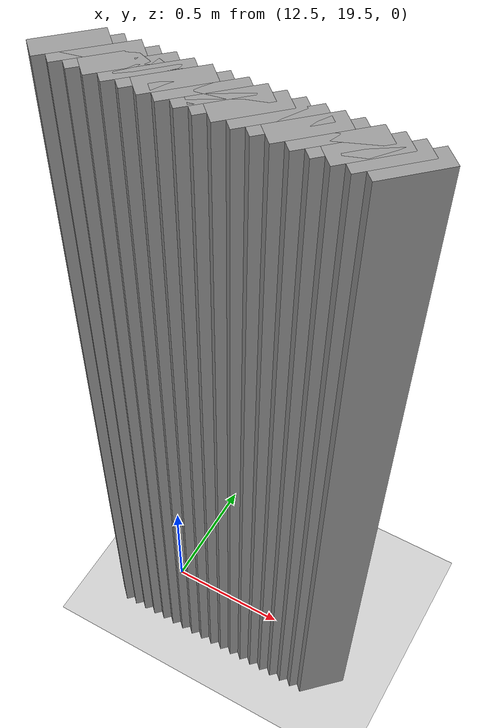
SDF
<sdf version="1.5">
 <world name="default">
  <include><uri>model://ground_plane</uri></include>
  <include><uri>model://sun</uri></include>
  <model name="grey_wall_435">
   <static>1</static>
   <link name="link">
    <pose>12.4 19.35  1.4 0 0 -0.785398163397</pose>
    <collision name="collision"><geometry><box><size>0.0707106781187 .2  2.8</size></box></geometry></collision>
    <visual name="visual">
     <cast_shadows>0</cast_shadows>
     <geometry><box><size>0.0707106781187 .2  2.8</size></box></geometry>
     <material>
      <script>
       <uri>model://grey_wall/materials/scripts</uri>
       <uri>model://grey_wall/materials/textures</uri>
       <name>vrc/grey_wall</name>
      </script>
     </material>
    </visual>
   </link>
  </model>
  <model name="grey_wall_436">
   <static>1</static>
   <link name="link">
    <pose>12.45 19.35  1.4 0 0 -0.785398163397</pose>
    <collision name="collision"><geometry><box><size>0.0707106781187 .2  2.8</size></box></geometry></collision>
    <visual name="visual">
     <cast_shadows>0</cast_shadows>
     <geometry><box><size>0.0707106781187 .2  2.8</size></box></geometry>
     <material>
      <script>
       <uri>model://grey_wall/materials/scripts</uri>
       <uri>model://grey_wall/materials/textures</uri>
       <name>vrc/grey_wall</name>
      </script>
     </material>
    </visual>
   </link>
  </model>
  <model name="grey_wall_437">
   <static>1</static>
   <link name="link">
    <pose>12.5 19.35  1.4 0 0 -0.785398163397</pose>
    <collision name="collision"><geometry><box><size>0.0707106781187 .2  2.8</size></box></geometry></collision>
    <visual name="visual">
     <cast_shadows>0</cast_shadows>
     <geometry><box><size>0.0707106781187 .2  2.8</size></box></geometry>
     <material>
      <script>
       <uri>model://grey_wall/materials/scripts</uri>
       <uri>model://grey_wall/materials/textures</uri>
       <name>vrc/grey_wall</name>
      </script>
     </material>
    </visual>
   </link>
  </model>
  <model name="grey_wall_438">
   <static>1</static>
   <link name="link">
    <pose>12.55 19.35  1.4 0 0 -0.785398163397</pose>
    <collision name="collision"><geometry><box><size>0.0707106781187 .2  2.8</size></box></geometry></collision>
    <visual name="visual">
     <cast_shadows>0</cast_shadows>
     <geometry><box><size>0.0707106781187 .2  2.8</size></box></geometry>
     <material>
      <script>
       <uri>model://grey_wall/materials/scripts</uri>
       <uri>model://grey_wall/materials/textures</uri>
       <name>vrc/grey_wall</name>
      </script>
     </material>
    </visual>
   </link>
  </model>
  <model name="grey_wall_439">
   <static>1</static>
   <link name="link">
    <pose>12.6 19.35  1.4 0 0 -0.785398163397</pose>
    <collision name="collision"><geometry><box><size>0.0707106781187 .2  2.8</size></box></geometry></collision>
    <visual name="visual">
     <cast_shadows>0</cast_shadows>
     <geometry><box><size>0.0707106781187 .2  2.8</size></box></geometry>
     <material>
      <script>
       <uri>model://grey_wall/materials/scripts</uri>
       <uri>model://grey_wall/materials/textures</uri>
       <name>vrc/grey_wall</name>
      </script>
     </material>
    </visual>
   </link>
  </model>
  <model name="grey_wall_440">
   <static>1</static>
   <link name="link">
    <pose>12.65 19.35  1.4 0 0 -0.785398163397</pose>
    <collision name="collision"><geometry><box><size>0.0707106781187 .2  2.8</size></box></geometry></collision>
    <visual name="visual">
     <cast_shadows>0</cast_shadows>
     <geometry><box><size>0.0707106781187 .2  2.8</size></box></geometry>
     <material>
      <script>
       <uri>model://grey_wall/materials/scripts</uri>
       <uri>model://grey_wall/materials/textures</uri>
       <name>vrc/grey_wall</name>
      </script>
     </material>
    </visual>
   </link>
  </model>
  <model name="grey_wall_441">
   <static>1</static>
   <link name="link">
    <pose>12.7 19.35  1.4 0 0 -0.785398163397</pose>
    <collision name="collision"><geometry><box><size>0.0707106781187 .2  2.8</size></box></geometry></collision>
    <visual name="visual">
     <cast_shadows>0</cast_shadows>
     <geometry><box><size>0.0707106781187 .2  2.8</size></box></geometry>
     <material>
      <script>
       <uri>model://grey_wall/materials/scripts</uri>
       <uri>model://grey_wall/materials/textures</uri>
       <name>vrc/grey_wall</name>
      </script>
     </material>
    </visual>
   </link>
  </model>
  <model name="grey_wall_442">
   <static>1</static>
   <link name="link">
    <pose>12.75 19.35  1.4 0 0 -0.785398163397</pose>
    <collision name="collision"><geometry><box><size>0.0707106781187 .2  2.8</size></box></geometry></collision>
    <visual name="visual">
     <cast_shadows>0</cast_shadows>
     <geometry><box><size>0.0707106781187 .2  2.8</size></box></geometry>
     <material>
      <script>
       <uri>model://grey_wall/materials/scripts</uri>
       <uri>model://grey_wall/materials/textures</uri>
       <name>vrc/grey_wall</name>
      </script>
     </material>
    </visual>
   </link>
  </model>
  <model name="grey_wall_443">
   <static>1</static>
   <link name="link">
    <pose>12.8 19.35  1.4 0 0 -0.785398163397</pose>
    <collision name="collision"><geometry><box><size>0.0707106781187 .2  2.8</size></box></geometry></collision>
    <visual name="visual">
     <cast_shadows>0</cast_shadows>
     <geometry><box><size>0.0707106781187 .2  2.8</size></box></geometry>
     <material>
      <script>
       <uri>model://grey_wall/materials/scripts</uri>
       <uri>model://grey_wall/materials/textures</uri>
       <name>vrc/grey_wall</name>
      </script>
     </material>
    </visual>
   </link>
  </model>
  <model name="grey_wall_444">
   <static>1</static>
   <link name="link">
    <pose>12.85 19.35  1.4 0 0 -0.785398163397</pose>
    <collision name="collision"><geometry><box><size>0.0707106781187 .2  2.8</size></box></geometry></collision>
    <visual name="visual">
     <cast_shadows>0</cast_shadows>
     <geometry><box><size>0.0707106781187 .2  2.8</size></box></geometry>
     <material>
      <script>
       <uri>model://grey_wall/materials/scripts</uri>
       <uri>model://grey_wall/materials/textures</uri>
       <name>vrc/grey_wall</name>
      </script>
     </material>
    </visual>
   </link>
  </model>
  <model name="grey_wall_445">
   <static>1</static>
   <link name="link">
    <pose>12.9 19.35  1.4 0 0 -0.785398163397</pose>
    <collision name="collision"><geometry><box><size>0.0707106781187 .2  2.8</size></box></geometry></collision>
    <visual name="visual">
     <cast_shadows>0</cast_shadows>
     <geometry><box><size>0.0707106781187 .2  2.8</size></box></geometry>
     <material>
      <script>
       <uri>model://grey_wall/materials/scripts</uri>
       <uri>model://grey_wall/materials/textures</uri>
       <name>vrc/grey_wall</name>
      </script>
     </material>
    </visual>
   </link>
  </model>
  <model name="grey_wall_446">
   <static>1</static>
   <link name="link">
    <pose>12.95 19.35  1.4 0 0 -0.785398163397</pose>
    <collision name="collision"><geometry><box><size>0.0707106781187 .2  2.8</size></box></geometry></collision>
    <visual name="visual">
     <cast_shadows>0</cast_shadows>
     <geometry><box><size>0.0707106781187 .2  2.8</size></box></geometry>
     <material>
      <script>
       <uri>model://grey_wall/materials/scripts</uri>
       <uri>model://grey_wall/materials/textures</uri>
       <name>vrc/grey_wall</name>
      </script>
     </material>
    </visual>
   </link>
  </model>
  <model name="grey_wall_447">
   <static>1</static>
   <link name="link">
    <pose>13.0 19.35  1.4 0 0 -0.785398163397</pose>
    <collision name="collision"><geometry><box><size>0.0707106781187 .2  2.8</size></box></geometry></collision>
    <visual name="visual">
     <cast_shadows>0</cast_shadows>
     <geometry><box><size>0.0707106781187 .2  2.8</size></box></geometry>
     <material>
      <script>
       <uri>model://grey_wall/materials/scripts</uri>
       <uri>model://grey_wall/materials/textures</uri>
       <name>vrc/grey_wall</name>
      </script>
     </material>
    </visual>
   </link>
  </model>
  <model name="grey_wall_448">
   <static>1</static>
   <link name="link">
    <pose>13.05 19.35  1.4 0 0 -0.785398163397</pose>
    <collision name="collision"><geometry><box><size>0.0707106781187 .2  2.8</size></box></geometry></collision>
    <visual name="visual">
     <cast_shadows>0</cast_shadows>
     <geometry><box><size>0.0707106781187 .2  2.8</size></box></geometry>
     <material>
      <script>
       <uri>model://grey_wall/materials/scripts</uri>
       <uri>model://grey_wall/materials/textures</uri>
       <name>vrc/grey_wall</name>
      </script>
     </material>
    </visual>
   </link>
  </model>
  <model name="grey_wall_449">
   <static>1</static>
   <link name="link">
    <pose>13.1 19.35  1.4 0 0 -0.785398163397</pose>
    <collision name="collision"><geometry><box><size>0.0707106781187 .2  2.8</size></box></geometry></collision>
    <visual name="visual">
     <cast_shadows>0</cast_shadows>
     <geometry><box><size>0.0707106781187 .2  2.8</size></box></geometry>
     <material>
      <script>
       <uri>model://grey_wall/materials/scripts</uri>
       <uri>model://grey_wall/materials/textures</uri>
       <name>vrc/grey_wall</name>
      </script>
     </material>
    </visual>
   </link>
  </model>
  <model name="grey_wall_450">
   <static>1</static>
   <link name="link">
    <pose>13.15 19.35  1.4 0 0 -0.785398163397</pose>
    <collision name="collision"><geometry><box><size>0.0707106781187 .2  2.8</size></box></geometry></collision>
    <visual name="visual">
     <cast_shadows>0</cast_shadows>
     <geometry><box><size>0.0707106781187 .2  2.8</size></box></geometry>
     <material>
      <script>
       <uri>model://grey_wall/materials/scripts</uri>
       <uri>model://grey_wall/materials/textures</uri>
       <name>vrc/grey_wall</name>
      </script>
     </material>
    </visual>
   </link>
  </model>
  <model name="grey_wall_451">
   <static>1</static>
   <link name="link">
    <pose>13.2 19.35  1.4 0 0 -0.785398163397</pose>
    <collision name="collision"><geometry><box><size>0.0707106781187 .2  2.8</size></box></geometry></collision>
    <visual name="visual">
     <cast_shadows>0</cast_shadows>
     <geometry><box><size>0.0707106781187 .2  2.8</size></box></geometry>
     <material>
      <script>
       <uri>model://grey_wall/materials/scripts</uri>
       <uri>model://grey_wall/materials/textures</uri>
       <name>vrc/grey_wall</name>
      </script>
     </material>
    </visual>
   </link>
  </model>
  <model name="grey_wall_452">
   <static>1</static>
   <link name="link">
    <pose>13.25 19.35  1.4 0 0 -0.785398163397</pose>
    <collision name="collision"><geometry><box><size>0.0707106781187 .2  2.8</size></box></geometry></collision>
    <visual name="visual">
     <cast_shadows>0</cast_shadows>
     <geometry><box><size>0.0707106781187 .2  2.8</size></box></geometry>
     <material>
      <script>
       <uri>model://grey_wall/materials/scripts</uri>
       <uri>model://grey_wall/materials/textures</uri>
       <name>vrc/grey_wall</name>
      </script>
     </material>
    </visual>
   </link>
  </model>
  <model name="grey_wall_453">
   <static>1</static>
   <link name="link">
    <pose>13.3 19.35  1.4 0 0 -0.785398163397</pose>
    <collision name="collision"><geometry><box><size>0.0707106781187 .2  2.8</size></box></geometry></collision>
    <visual name="visual">
     <cast_shadows>0</cast_shadows>
     <geometry><box><size>0.0707106781187 .2  2.8</size></box></geometry>
     <material>
      <script>
       <uri>model://grey_wall/materials/scripts</uri>
       <uri>model://grey_wall/materials/textures</uri>
       <name>vrc/grey_wall</name>
      </script>
     </material>
    </visual>
   </link>
  </model>
 </world>
</sdf>
